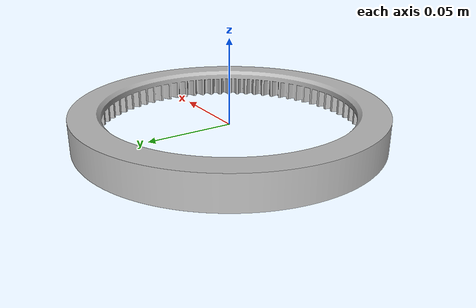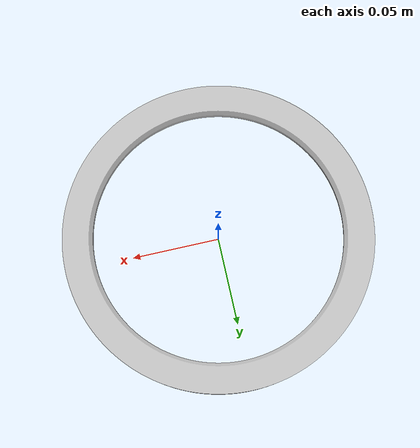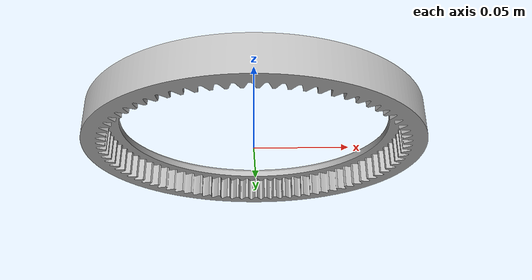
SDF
<?xml version="1.0" ?>
<sdf version="1.4">
    <model name="challenge_crown">
    <static>false</static>
    <link name="link">
        <pose>0 0 0 0 0 0</pose>
        <collision name="collision">
            <geometry>
                <mesh>
                    <uri>model://challenge_crown/mesh/challenge_crown.stl</uri>
                    <scale>0.001 0.001 0.001</scale>
                </mesh>
            </geometry>
        </collision>
        <visual name="visual">
            <geometry>
                <mesh>
                    <uri>model://challenge_crown/mesh/challenge_crown.stl</uri>
                    <scale>0.001 0.001 0.001</scale>
                </mesh>
            </geometry>
        </visual>
        </link>
    </model>
</sdf>
